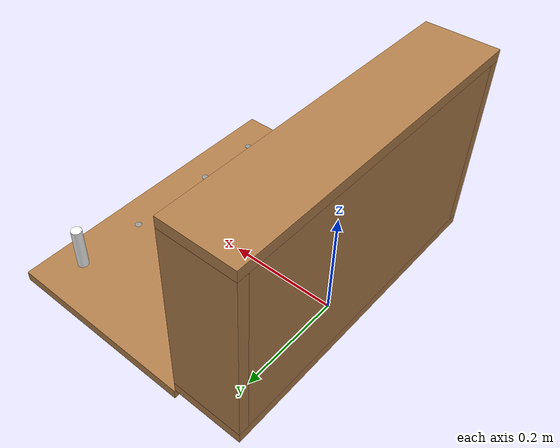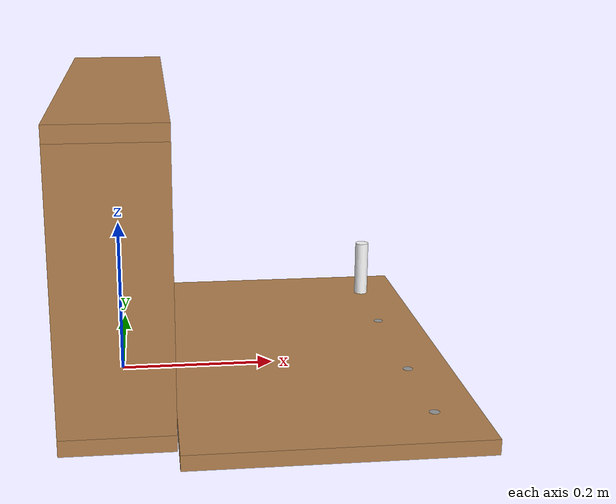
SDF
<?xml version="1.0" ?>

<sdf version="1.5">
  <model name="wooden_case_wooden_peg">
    <include>
      <name>wooden_case</name>
      <uri>model://wooden_case</uri>
    </include>

    <include>
      <name>peg</name>
      <uri>model://wooden_peg</uri>
      <pose>0.365774 0.216 0.01905 0 0 0</pose>
    </include>

    <joint name="case_peg" type="revolute">
      <child>peg::link</child>
      <parent>wooden_case::lid</parent>
      <axis>
        <xyz>0 0 1</xyz>
        <limit>
          <upper>0</upper>
          <lower>0</lower>
        </limit>
      </axis>
    </joint>

  </model>
</sdf>

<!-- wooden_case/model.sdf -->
<sdf version="1.5">
  <model name="wooden_case">
    <link name="base">

      <pose>0 0 0.024  0 0 0</pose>
      <inertial>
        <pose>-0.02218446808213116 0.0 0.17159249678128843  0 0 0</pose>
        <mass>3.9626366887499986</mass>
        <inertia>
          <ixx>0.2135364168029657</ixx>
          <ixy>0.0</ixy>
          <ixz>0.0007793770806417083</ixz>
          <iyy>0.07089428398599372</iyy>
          <iyz>0.0</iyz>
          <izz>0.15460392299497075</izz>
        </inertia>
      </inertial>

      <collision name="collision_back">
        <pose>-0.053975 0 0.17779999999999999  0 0 0</pose>
        <geometry>
          <box>
            <size>0.019049999999999997 0.5460999999999999 0.3175</size>
          </box>
        </geometry>
        <surface>
          <contact>

            <poissons_ratio>0.347</poissons_ratio>
            <elastic_modulus>8.8e+09</elastic_modulus>
            <ode>
              <kp>100000</kp>
              <kd>100</kd>
              <max_vel>100.0</max_vel>
              <min_depth>0.001</min_depth>
            </ode>
          </contact>
          <friction>
            <torsional>
              <coefficient>1.0</coefficient>
              <use_patch_radius>0</use_patch_radius>
              <surface_radius>0.01</surface_radius>
            </torsional>
          </friction>
        </surface>
      </collision>
      <visual name="visual_back">
        <pose>-0.053975 0 0.17779999999999999  0 0 0</pose>
        <geometry>
          <box>
            <size>0.019049999999999997 0.5460999999999999 0.3175</size>
          </box>
        </geometry>
        <material>
          <script>
            <uri>model://media/materials/scripts/gazebo.material</uri>
            <name>Gazebo/Wood</name>
          </script>
        </material>
      </visual>

      <collision name="collision_bottom">
        <pose>0 0 0.009524999999999999  0 0 0</pose>
        <geometry>
          <box>
            <size>0.127 0.5841999999999999 0.019049999999999997</size>
          </box>
        </geometry>
        <surface>
          <contact>

            <poissons_ratio>0.347</poissons_ratio>
            <elastic_modulus>8.8e+09</elastic_modulus>
            <ode>
              <kp>100000</kp>
              <kd>100</kd>
              <max_vel>100.0</max_vel>
              <min_depth>0.001</min_depth>
            </ode>
          </contact>
          <friction>
            <torsional>
              <coefficient>1.0</coefficient>
              <use_patch_radius>0</use_patch_radius>
              <surface_radius>0.01</surface_radius>
            </torsional>
          </friction>
        </surface>
      </collision>
      <visual name="visual_bottom">
        <pose>0 0 0.009524999999999999  0 0 0</pose>
        <geometry>
          <box>
            <size>0.127 0.5841999999999999 0.019049999999999997</size>
          </box>
        </geometry>
        <material>
          <script>
            <uri>model://media/materials/scripts/gazebo.material</uri>
            <name>Gazebo/Wood</name>
          </script>
        </material>
      </visual>

      <collision name="collision_top">
        <pose>0 0 0.34607499999999997  0 0 0</pose>
        <geometry>
          <box>
            <size>0.127 0.5841999999999999 0.019049999999999997</size>
          </box>
        </geometry>
        <surface>
          <contact>

            <poissons_ratio>0.347</poissons_ratio>
            <elastic_modulus>8.8e+09</elastic_modulus>
            <ode>
              <kp>100000</kp>
              <kd>100</kd>
              <max_vel>100.0</max_vel>
              <min_depth>0.001</min_depth>
            </ode>
          </contact>
          <friction>
            <torsional>
              <coefficient>1.0</coefficient>
              <use_patch_radius>0</use_patch_radius>
              <surface_radius>0.01</surface_radius>
            </torsional>
          </friction>
        </surface>
      </collision>
      <visual name="visual_top">
        <pose>0 0 0.34607499999999997  0 0 0</pose>
        <geometry>
          <box>
            <size>0.127 0.5841999999999999 0.019049999999999997</size>
          </box>
        </geometry>
        <material>
          <script>
            <uri>model://media/materials/scripts/gazebo.material</uri>
            <name>Gazebo/Wood</name>
          </script>
        </material>
      </visual>

      <collision name="collision_left">
        <pose>0 -0.28257499999999997 0.17779999999999999  0 0 0</pose>
        <geometry>
          <box>
            <size>0.127 0.019049999999999997 0.3175</size>
          </box>
        </geometry>
        <surface>
          <contact>

            <poissons_ratio>0.347</poissons_ratio>
            <elastic_modulus>8.8e+09</elastic_modulus>
            <ode>
              <kp>100000</kp>
              <kd>100</kd>
              <max_vel>100.0</max_vel>
              <min_depth>0.001</min_depth>
            </ode>
          </contact>
          <friction>
            <torsional>
              <coefficient>1.0</coefficient>
              <use_patch_radius>0</use_patch_radius>
              <surface_radius>0.01</surface_radius>
            </torsional>
          </friction>
        </surface>
      </collision>
      <visual name="visual_left">
        <pose>0 -0.28257499999999997 0.17779999999999999  0 0 0</pose>
        <geometry>
          <box>
            <size>0.127 0.019049999999999997 0.3175</size>
          </box>
        </geometry>
        <material>
          <script>
            <uri>model://media/materials/scripts/gazebo.material</uri>
            <name>Gazebo/Wood</name>
          </script>
        </material>
      </visual>

      <collision name="collision_right">
        <pose>0 0.28257499999999997 0.17779999999999999  0 0 0</pose>
        <geometry>
          <box>
            <size>0.127 0.019049999999999997 0.3175</size>
          </box>
        </geometry>
        <surface>
          <contact>

            <poissons_ratio>0.347</poissons_ratio>
            <elastic_modulus>8.8e+09</elastic_modulus>
            <ode>
              <kp>100000</kp>
              <kd>100</kd>
              <max_vel>100.0</max_vel>
              <min_depth>0.001</min_depth>
            </ode>
          </contact>
          <friction>
            <torsional>
              <coefficient>1.0</coefficient>
              <use_patch_radius>0</use_patch_radius>
              <surface_radius>0.01</surface_radius>
            </torsional>
          </friction>
        </surface>
      </collision>
      <visual name="visual_right">
        <pose>0 0.28257499999999997 0.17779999999999999  0 0 0</pose>
        <geometry>
          <box>
            <size>0.127 0.019049999999999997 0.3175</size>
          </box>
        </geometry>
        <material>
          <script>
            <uri>model://media/materials/scripts/gazebo.material</uri>
            <name>Gazebo/Wood</name>
          </script>
        </material>
      </visual>

      <collision name="collision_block_left">
        <pose>0.009500000000000001 -0.21509999999999996 -0.012  0 0 0</pose>
        <geometry>
          <box>
            <size>0.108 0.05 0.024</size>
          </box>
        </geometry>
        <surface>
          <contact>

            <poissons_ratio>0.347</poissons_ratio>
            <elastic_modulus>8.8e+09</elastic_modulus>
            <ode>
              <kp>100000</kp>
              <kd>100</kd>
              <max_vel>100.0</max_vel>
              <min_depth>0.001</min_depth>
            </ode>
          </contact>
          <friction>
            <torsional>
              <coefficient>1.0</coefficient>
              <use_patch_radius>0</use_patch_radius>
              <surface_radius>0.01</surface_radius>
            </torsional>
          </friction>
        </surface>
      </collision>
      <visual name="visual_block_left">
        <pose>0.009500000000000001 -0.21509999999999996 -0.012  0 0 0</pose>
        <geometry>
          <box>
            <size>0.108 0.05 0.024</size>
          </box>
        </geometry>
        <material>
          <script>
            <uri>model://media/materials/scripts/gazebo.material</uri>
            <name>Gazebo/Wood</name>
          </script>
        </material>
      </visual>

      <collision name="collision_block_right">
        <pose>0.009500000000000001 0.21509999999999996 -0.012  0 0 0</pose>
        <geometry>
          <box>
            <size>0.108 0.05 0.024</size>
          </box>
        </geometry>
        <surface>
          <contact>

            <poissons_ratio>0.347</poissons_ratio>
            <elastic_modulus>8.8e+09</elastic_modulus>
            <ode>
              <kp>100000</kp>
              <kd>100</kd>
              <max_vel>100.0</max_vel>
              <min_depth>0.001</min_depth>
            </ode>
          </contact>
          <friction>
            <torsional>
              <coefficient>1.0</coefficient>
              <use_patch_radius>0</use_patch_radius>
              <surface_radius>0.01</surface_radius>
            </torsional>
          </friction>
        </surface>
      </collision>
      <visual name="visual_block_right">
        <pose>0.009500000000000001 0.21509999999999996 -0.012  0 0 0</pose>
        <geometry>
          <box>
            <size>0.108 0.05 0.024</size>
          </box>
        </geometry>
        <material>
          <script>
            <uri>model://media/materials/scripts/gazebo.material</uri>
            <name>Gazebo/Wood</name>
          </script>
        </material>
      </visual>

    </link>

    <link name="lid">

      <pose>0.24377499999999996 0 0.009524999999999999  0 0 0</pose>
      <inertial>
        <mass>1.9787379779999992</mass>
        <inertia>
          <ixx>0.05633673842708405</ixx>
          <ixy>0</ixy>
          <ixz>0</ixz>
          <iyy>0.020911016446734258</iyy>
          <iyz>0</iyz>
          <izz>0.07712807338064145</izz>
        </inertia>
      </inertial>
      <collision name="collision">
        <geometry>
          <box>
            <size>0.35559999999999997 0.5841999999999999 0.019049999999999997</size>
          </box>
        </geometry>
        <surface>
          <contact>

            <poissons_ratio>0.347</poissons_ratio>
            <elastic_modulus>8.8e+09</elastic_modulus>
            <ode>
              <kp>100000</kp>
              <kd>100</kd>
              <max_vel>100.0</max_vel>
              <min_depth>0.001</min_depth>
            </ode>
          </contact>
          <friction>
            <torsional>
              <coefficient>1.0</coefficient>
              <use_patch_radius>0</use_patch_radius>
              <surface_radius>0.01</surface_radius>
            </torsional>
          </friction>
        </surface>
      </collision>
      <visual name="visual">
        <geometry>
          <box>
            <size>0.35559999999999997 0.5841999999999999 0.019049999999999997</size>
          </box>
        </geometry>
        <material>
          <script>
            <uri>model://media/materials/scripts/gazebo.material</uri>
            <name>Gazebo/Wood</name>
          </script>
        </material>
      </visual>

      <visual name="tee_nut_1">
        <pose>0.122 -0.216 0.0  0 0 0</pose>
        <geometry>
          <cylinder>
            <radius>0.00635</radius>
            <length>0.019240499999999997</length>
          </cylinder>
        </geometry>
        <material>
          <script>
            <uri>model://media/materials/scripts/gazebo.material</uri>
            <name>Gazebo/Grey</name>
          </script>
        </material>
      </visual>

      <visual name="tee_nut_2">
        <pose>0.122 -0.088 0.0  0 0 0</pose>
        <geometry>
          <cylinder>
            <radius>0.00635</radius>
            <length>0.019240499999999997</length>
          </cylinder>
        </geometry>
        <material>
          <script>
            <uri>model://media/materials/scripts/gazebo.material</uri>
            <name>Gazebo/Grey</name>
          </script>
        </material>
      </visual>

      <visual name="tee_nut_3">
        <pose>0.122 0.088 0.0  0 0 0</pose>
        <geometry>
          <cylinder>
            <radius>0.00635</radius>
            <length>0.019240499999999997</length>
          </cylinder>
        </geometry>
        <material>
          <script>
            <uri>model://media/materials/scripts/gazebo.material</uri>
            <name>Gazebo/Grey</name>
          </script>
        </material>
      </visual>

      <visual name="tee_nut_4">
        <pose>0.122 0.216 0.0  0 0 0</pose>
        <geometry>
          <cylinder>
            <radius>0.00635</radius>
            <length>0.019240499999999997</length>
          </cylinder>
        </geometry>
        <material>
          <script>
            <uri>model://media/materials/scripts/gazebo.material</uri>
            <name>Gazebo/Grey</name>
          </script>
        </material>
      </visual>

    </link>

    <joint name="lid_hinge" type="revolute">
      <pose>-0.17779999999999999 0 0.019049999999999997  0 0 0</pose>
      <parent>base</parent>
      <child>lid</child>
      <axis>
        <xyz>0 1 0</xyz>
        <limit>
          <upper>0.5235987755982988</upper>
          <lower>-1.5707963267948966</lower>
        </limit>
      </axis>
    </joint>

  </model>
</sdf>

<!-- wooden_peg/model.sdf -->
<sdf version="1.5">
  <model name="wooden_peg">
    <link name="link">
      <pose>0 0 0.04 0 0 0</pose>
      <inertial>
        <mass>0.0175</mass>
        <inertia>
          <ixx>9.749231770833334e-06</ixx>
          <ixy>0</ixy>
          <ixz>0</ixz>
          <iyy>9.749231770833334e-06</iyy>
          <iyz>0</iyz>
          <izz>8.317968750000001e-07</izz>
        </inertia>
      </inertial>

      <collision name="collision">
        <geometry>
          <cylinder>
            <radius> 0.00975 </radius>
            <length> 0.08 </length>
          </cylinder>
        </geometry>
        <surface>
          <contact>
            <!-- Red Pine coefficients for longitudinal axis of the wood
                 according to:
                 http://www.fpl.fs.fed.us/documnts/fplgtr/fplgtr113/ch04.pdf -->
            <poissons_ratio>0.347</poissons_ratio>
            <elastic_modulus>8.8e+09</elastic_modulus>
            <ode>
              <kp>100000</kp>
              <kd>100</kd>
              <max_vel>100.0</max_vel>
              <min_depth>0.001</min_depth>
            </ode>
          </contact>
          <friction>
            <torsional>
              <coefficient>1.0</coefficient>
              <use_patch_radius>0</use_patch_radius>
              <surface_radius>0.01</surface_radius>
            </torsional>
          </friction>
        </surface>
      </collision>

      <visual name="visual">
        <geometry>
          <cylinder>
            <radius> 0.00975 </radius>
            <length> 0.08 </length>
          </cylinder>
        </geometry>
        <material><diffuse>1 1 1 1</diffuse><specular>0.1 0.1 0.1 1</specular></material>
      </visual>

    </link>
  </model>
</sdf>
